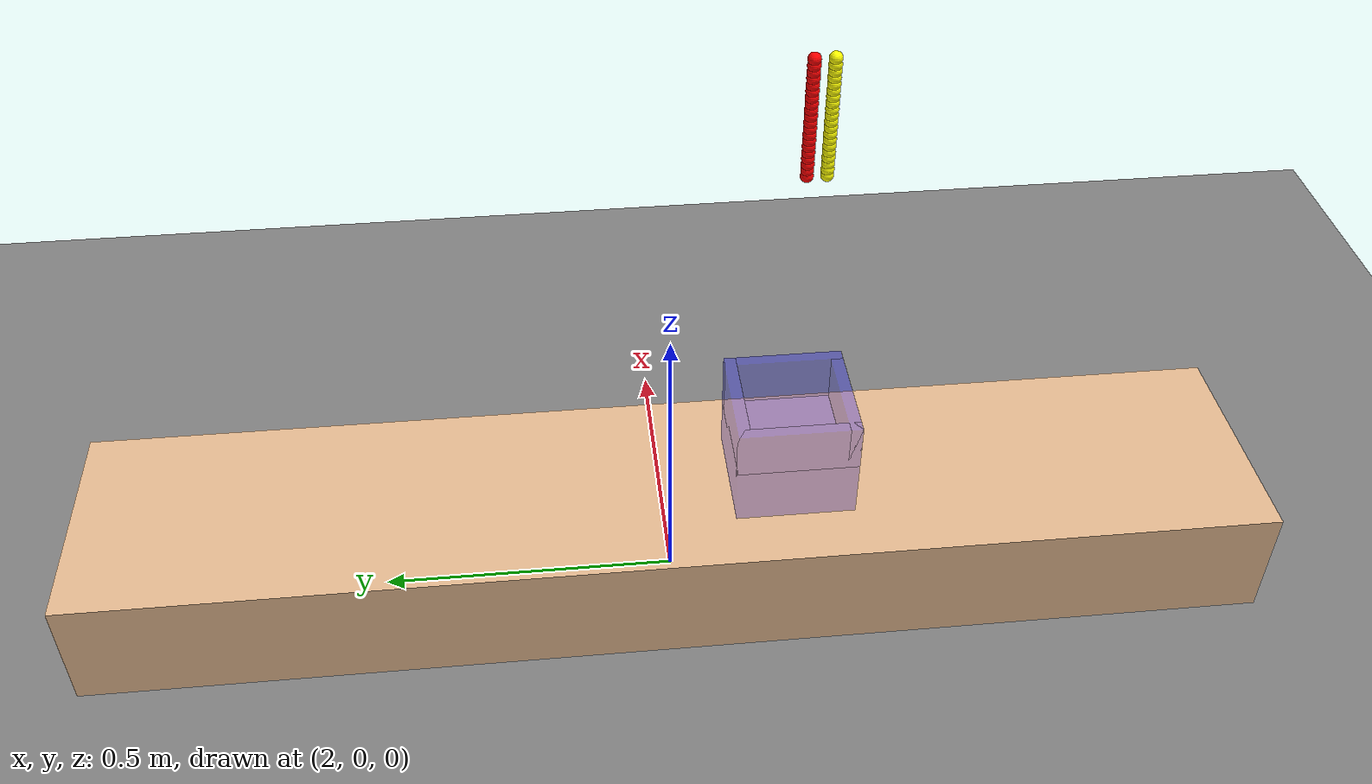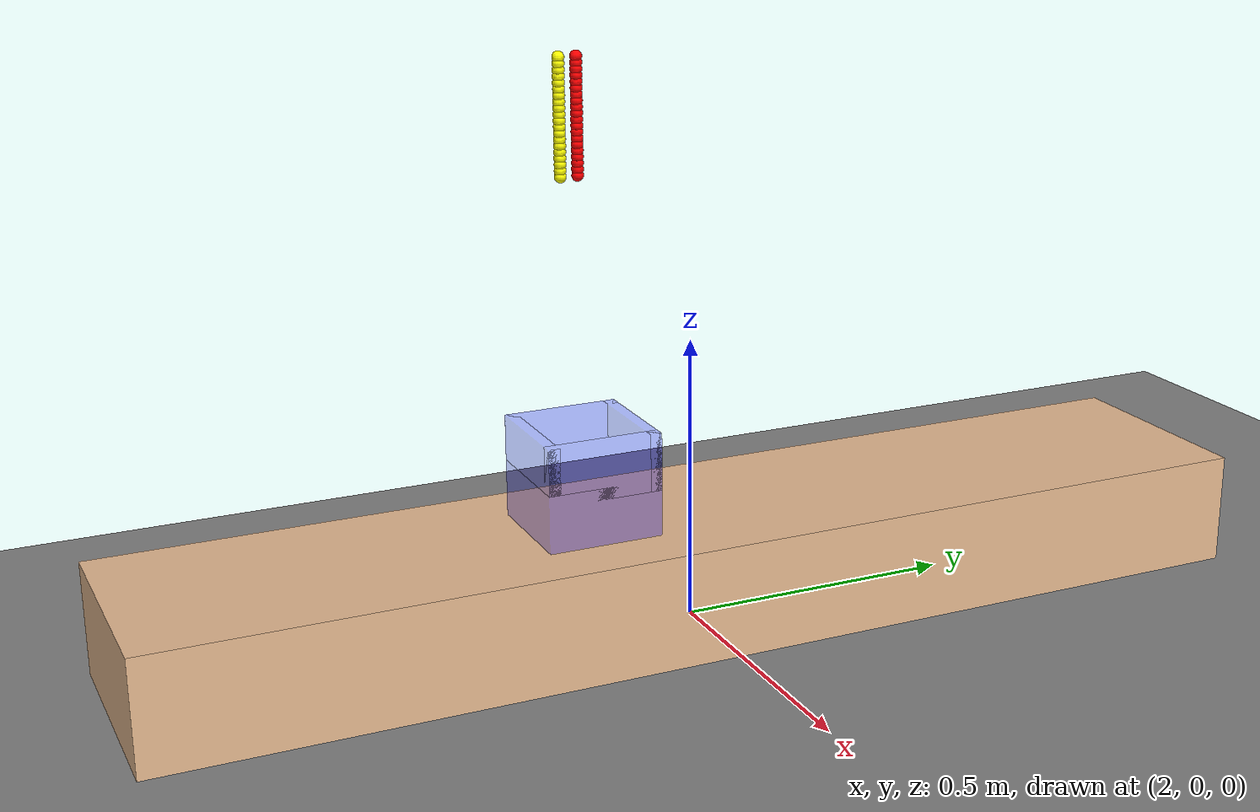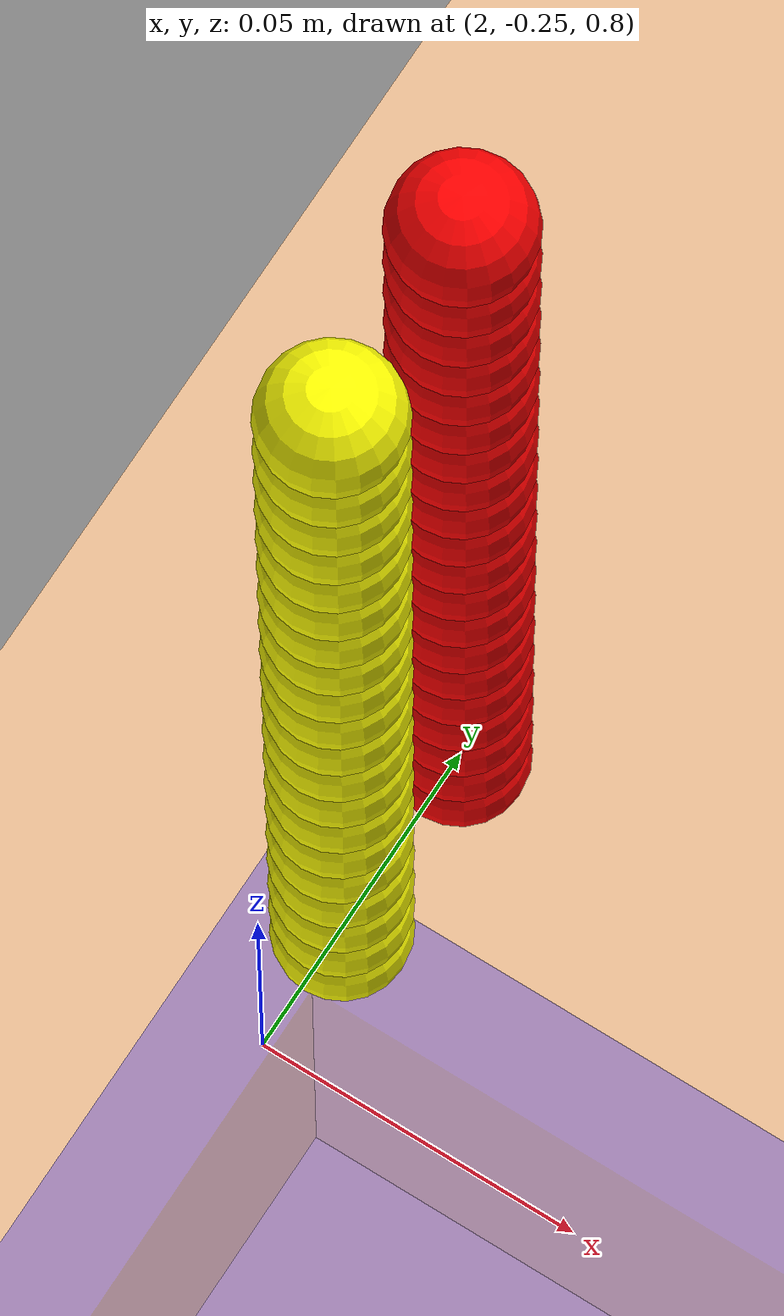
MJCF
<mujoco>
	<compiler/>
	<option timestep="0.001" integrator="RK4" solver="CG" gravity="0 0 -9.81">
		<flag sensornoise="disable" contact="enable"/>
	</option>

  <default>
        <geom condim="4" solimp="0.99 0.99 0" solref="0.01 1" friction="1 0.005 0.0001"/>
    </default>

	<asset>
        <texture type="skybox" builtin="gradient" rgb1="1 1 1" rgb2=".6 .8 1" width="256" height="256"/>
		<texture name="grid" type="2d" builtin="checker" width="112" height="112" rgb1="0 0 0" rgb2="1 1 1" />
		<material name="grid" texture="grid" texrepeat="1 1" texuniform="true" reflectance=".2" />
	</asset>

	<worldbody>
		<geom name="floor" size="0 0 .05" type="plane" material="grid" condim="3" />
		<light diffuse="1 1 1" pos="0 0 5" dir="0 0 -1" />
		<light diffuse="1 1 1" pos="2 -1 5" dir="0 0 -1" />
		<light diffuse="1 1 1" pos="1 1 5" dir="0 0 -1" />
	</worldbody>

	<worldbody>
		<body name="table" pos="2 0 0.1">
			<geom name="table_geom" type="box" size="0.2 1 0.1" rgba=".89 0.72 .56 1"/>
		</body>

		<body name="bowl" pos="2 -0.2 0.29">
			<geom name="bottom" type="box" size="0.1 0.1 0.05" pos="0 0 -0.04" rgba="0 0 1 0.3" mass="3"/>

			<geom name="side1" type="box" size="0.01 0.1 0.05" pos="0.09 0 0.04" rgba="0 0 1 0.3"/>
			<geom name="side2" type="box" size="0.01 0.1 0.05" pos="-0.09 0 0.04" rgba="0 0 1 0.3"/>
			<geom name="side3" type="box" size="0.1 0.01 0.05" pos="0 0.09 0.04" rgba="0 0 1 0.3"/>
			<geom name="side4" type="box" size="0.1 0.01 0.05" pos="0 -0.09 0.04" rgba="0 0 1 0.3"/>
		</body>

	</worldbody>

	<worldbody>
		<body name="sync_ball0" pos="2 -0.2 0.8">
			<freejoint/><inertial pos="0.0 0.0 0.0" mass="0.0001" diaginertia="0.000000001 0.000000001 0.000000001" />
			<geom type="sphere" size="0.01" rgba="1 0 0 1"/>
		</body>
		<body name="sync_ball1" pos="2 -0.2 0.81">
			<freejoint/> <inertial pos="0.0 0.0 0.0" mass="0.0001" diaginertia="0.000000001 0.000000001 0.000000001" />
			<geom type="sphere" size="0.01" rgba="1 0 0 1"/>
		</body>
		<body name="sync_ball2" pos="2 -0.2 0.8200000000000001">
			<freejoint/> <inertial pos="0.0 0.0 0.0" mass="0.0001" diaginertia="0.000000001 0.000000001 0.000000001" />
			<geom type="sphere" size="0.01" rgba="1 0 0 1"/>
		</body>
		<body name="sync_ball3" pos="2 -0.2 0.8300000000000001">
			<freejoint/> <inertial pos="0.0 0.0 0.0" mass="0.0001" diaginertia="0.000000001 0.000000001 0.000000001" />
			<geom type="sphere" size="0.01" rgba="1 0 0 1"/>
		</body>
		<body name="sync_ball4" pos="2 -0.2 0.8400000000000001">
			<freejoint/> <inertial pos="0.0 0.0 0.0" mass="0.0001" diaginertia="0.000000001 0.000000001 0.000000001" />
			<geom type="sphere" size="0.01" rgba="1 0 0 1"/>
		</body>
		<body name="sync_ball5" pos="2 -0.2 0.8500000000000001">
			<freejoint/> <inertial pos="0.0 0.0 0.0" mass="0.0001" diaginertia="0.000000001 0.000000001 0.000000001" />
			<geom type="sphere" size="0.01" rgba="1 0 0 1"/>
		</body>
		<body name="sync_ball6" pos="2 -0.2 0.8600000000000001">
			<freejoint/> <inertial pos="0.0 0.0 0.0" mass="0.0001" diaginertia="0.000000001 0.000000001 0.000000001" />
			<geom type="sphere" size="0.01" rgba="1 0 0 1"/>
		</body>
		<body name="sync_ball7" pos="2 -0.2 0.8700000000000001">
			<freejoint/> <inertial pos="0.0 0.0 0.0" mass="0.0001" diaginertia="0.000000001 0.000000001 0.000000001" />
			<geom type="sphere" size="0.01" rgba="1 0 0 1"/>
		</body>
		<body name="sync_ball8" pos="2 -0.2 0.88">
			<freejoint/> <inertial pos="0.0 0.0 0.0" mass="0.0001" diaginertia="0.000000001 0.000000001 0.000000001" />
			<geom type="sphere" size="0.01" rgba="1 0 0 1"/>
		</body>
		<body name="sync_ball9" pos="2 -0.2 0.89">
			<freejoint/> <inertial pos="0.0 0.0 0.0" mass="0.0001" diaginertia="0.000000001 0.000000001 0.000000001" />
			<geom type="sphere" size="0.01" rgba="1 0 0 1"/>
		</body>
		<body name="sync_ball10" pos="2 -0.2 0.9">
			<freejoint/> <inertial pos="0.0 0.0 0.0" mass="0.0001" diaginertia="0.000000001 0.000000001 0.000000001" />
			<geom type="sphere" size="0.01" rgba="1 0 0 1"/>
		</body>
		<body name="sync_ball11" pos="2 -0.2 0.91">
			<freejoint/> <inertial pos="0.0 0.0 0.0" mass="0.0001" diaginertia="0.000000001 0.000000001 0.000000001" />
			<geom type="sphere" size="0.01" rgba="1 0 0 1"/>
		</body>
		<body name="sync_ball12" pos="2 -0.2 0.92">
			<freejoint/> <inertial pos="0.0 0.0 0.0" mass="0.0001" diaginertia="0.000000001 0.000000001 0.000000001" />
			<geom type="sphere" size="0.01" rgba="1 0 0 1"/>
		</body>
		<body name="sync_ball13" pos="2 -0.2 0.93">
			<freejoint/> <inertial pos="0.0 0.0 0.0" mass="0.0001" diaginertia="0.000000001 0.000000001 0.000000001" />
			<geom type="sphere" size="0.01" rgba="1 0 0 1"/>
		</body>
		<body name="sync_ball14" pos="2 -0.2 0.9400000000000001">
			<freejoint/> <inertial pos="0.0 0.0 0.0" mass="0.0001" diaginertia="0.000000001 0.000000001 0.000000001" />
			<geom type="sphere" size="0.01" rgba="1 0 0 1"/>
		</body>
		<body name="sync_ball15" pos="2 -0.2 0.9500000000000001">
			<freejoint/> <inertial pos="0.0 0.0 0.0" mass="0.0001" diaginertia="0.000000001 0.000000001 0.000000001" />
			<geom type="sphere" size="0.01" rgba="1 0 0 1"/>
		</body>
		<body name="sync_ball16" pos="2 -0.2 0.9600000000000001">
			<freejoint/> <inertial pos="0.0 0.0 0.0" mass="0.0001" diaginertia="0.000000001 0.000000001 0.000000001" />
			<geom type="sphere" size="0.01" rgba="1 0 0 1"/>
		</body>
		<body name="sync_ball17" pos="2 -0.2 0.9700000000000001">
			<freejoint/> <inertial pos="0.0 0.0 0.0" mass="0.0001" diaginertia="0.000000001 0.000000001 0.000000001" />
			<geom type="sphere" size="0.01" rgba="1 0 0 1"/>
		</body>
		<body name="sync_ball18" pos="2 -0.2 0.98">
			<freejoint/> <inertial pos="0.0 0.0 0.0" mass="0.0001" diaginertia="0.000000001 0.000000001 0.000000001" />
			<geom type="sphere" size="0.01" rgba="1 0 0 1"/>
		</body>
		<body name="sync_ball19" pos="2 -0.2 0.99">
			<freejoint/> <inertial pos="0.0 0.0 0.0" mass="0.0001" diaginertia="0.000000001 0.000000001 0.000000001" />
			<geom type="sphere" size="0.01" rgba="1 0 0 1"/>
		</body>

		<body name="sync_ball20" pos="2 -0.23 0.8">
			<freejoint/><inertial pos="0.0 0.0 0.0" mass="0.0001" diaginertia="0.000000001 0.000000001 0.000000001" />
			<geom type="sphere" size="0.01" rgba="1 1 0 1"/>
		</body>
		<body name="sync_ball21" pos="2 -0.23 0.81">
			<freejoint/> <inertial pos="0.0 0.0 0.0" mass="0.0001" diaginertia="0.000000001 0.000000001 0.000000001" />
			<geom type="sphere" size="0.01" rgba="1 1 0 1"/>
		</body>
		<body name="sync_ball22" pos="2 -0.23 0.8200000000000001">
			<freejoint/> <inertial pos="0.0 0.0 0.0" mass="0.0001" diaginertia="0.000000001 0.000000001 0.000000001" />
			<geom type="sphere" size="0.01" rgba="1 1 0 1"/>
		</body>
		<body name="sync_ball23" pos="2 -0.23 0.8300000000000001">
			<freejoint/> <inertial pos="0.0 0.0 0.0" mass="0.0001" diaginertia="0.000000001 0.000000001 0.000000001" />
			<geom type="sphere" size="0.01" rgba="1 1 0 1"/>
		</body>
		<body name="sync_ball24" pos="2 -0.23 0.8400000000000001">
			<freejoint/> <inertial pos="0.0 0.0 0.0" mass="0.0001" diaginertia="0.000000001 0.000000001 0.000000001" />
			<geom type="sphere" size="0.01" rgba="1 1 0 1"/>
		</body>
		<body name="sync_ball25" pos="2 -0.23 0.8500000000000001">
			<freejoint/> <inertial pos="0.0 0.0 0.0" mass="0.0001" diaginertia="0.000000001 0.000000001 0.000000001" />
			<geom type="sphere" size="0.01" rgba="1 1 0 1"/>
		</body>
		<body name="sync_ball26" pos="2 -0.23 0.8600000000000001">
			<freejoint/> <inertial pos="0.0 0.0 0.0" mass="0.0001" diaginertia="0.000000001 0.000000001 0.000000001" />
			<geom type="sphere" size="0.01" rgba="1 1 0 1"/>
		</body>
		<body name="sync_ball27" pos="2 -0.23 0.8700000000000001">
			<freejoint/> <inertial pos="0.0 0.0 0.0" mass="0.0001" diaginertia="0.000000001 0.000000001 0.000000001" />
			<geom type="sphere" size="0.01" rgba="1 1 0 1"/>
		</body>
		<body name="sync_ball28" pos="2 -0.23 0.88">
			<freejoint/> <inertial pos="0.0 0.0 0.0" mass="0.0001" diaginertia="0.000000001 0.000000001 0.000000001" />
			<geom type="sphere" size="0.01" rgba="1 1 0 1"/>
		</body>
		<body name="sync_ball29" pos="2 -0.23 0.89">
			<freejoint/> <inertial pos="0.0 0.0 0.0" mass="0.0001" diaginertia="0.000000001 0.000000001 0.000000001" />
			<geom type="sphere" size="0.01" rgba="1 1 0 1"/>
		</body>
		<body name="sync_ball30" pos="2 -0.23 0.9">
			<freejoint/> <inertial pos="0.0 0.0 0.0" mass="0.0001" diaginertia="0.000000001 0.000000001 0.000000001" />
			<geom type="sphere" size="0.01" rgba="1 1 0 1"/>
		</body>
		<body name="sync_ball31" pos="2 -0.23 0.91">
			<freejoint/> <inertial pos="0.0 0.0 0.0" mass="0.0001" diaginertia="0.000000001 0.000000001 0.000000001" />
			<geom type="sphere" size="0.01" rgba="1 1 0 1"/>
		</body>
		<body name="sync_ball32" pos="2 -0.23 0.92">
			<freejoint/> <inertial pos="0.0 0.0 0.0" mass="0.0001" diaginertia="0.000000001 0.000000001 0.000000001" />
			<geom type="sphere" size="0.01" rgba="1 1 0 1"/>
		</body>
		<body name="sync_ball33" pos="2 -0.23 0.93">
			<freejoint/> <inertial pos="0.0 0.0 0.0" mass="0.0001" diaginertia="0.000000001 0.000000001 0.000000001" />
			<geom type="sphere" size="0.01" rgba="1 1 0 1"/>
		</body>
		<body name="sync_ball34" pos="2 -0.23 0.9400000000000001">
			<freejoint/> <inertial pos="0.0 0.0 0.0" mass="0.0001" diaginertia="0.000000001 0.000000001 0.000000001" />
			<geom type="sphere" size="0.01" rgba="1 1 0 1"/>
		</body>
		<body name="sync_ball35" pos="2 -0.23 0.9500000000000001">
			<freejoint/> <inertial pos="0.0 0.0 0.0" mass="0.0001" diaginertia="0.000000001 0.000000001 0.000000001" />
			<geom type="sphere" size="0.01" rgba="1 1 0 1"/>
		</body>
		<body name="sync_ball36" pos="2 -0.23 0.9600000000000001">
			<freejoint/> <inertial pos="0.0 0.0 0.0" mass="0.0001" diaginertia="0.000000001 0.000000001 0.000000001" />
			<geom type="sphere" size="0.01" rgba="1 1 0 1"/>
		</body>
		<body name="sync_ball37" pos="2 -0.23 0.9700000000000001">
			<freejoint/> <inertial pos="0.0 0.0 0.0" mass="0.0001" diaginertia="0.000000001 0.000000001 0.000000001" />
			<geom type="sphere" size="0.01" rgba="1 1 0 1"/>
		</body>
		<body name="sync_ball38" pos="2 -0.23 0.98">
			<freejoint/> <inertial pos="0.0 0.0 0.0" mass="0.0001" diaginertia="0.000000001 0.000000001 0.000000001" />
			<geom type="sphere" size="0.01" rgba="1 1 0 1"/>
		</body>
		<body name="sync_ball39" pos="2 -0.23 0.99">
			<freejoint/> <inertial pos="0.0 0.0 0.0" mass="0.0001" diaginertia="0.000000001 0.000000001 0.000000001" />
			<geom type="sphere" size="0.01" rgba="1 1 0 1"/>
		</body>
    </worldbody>
</mujoco>
